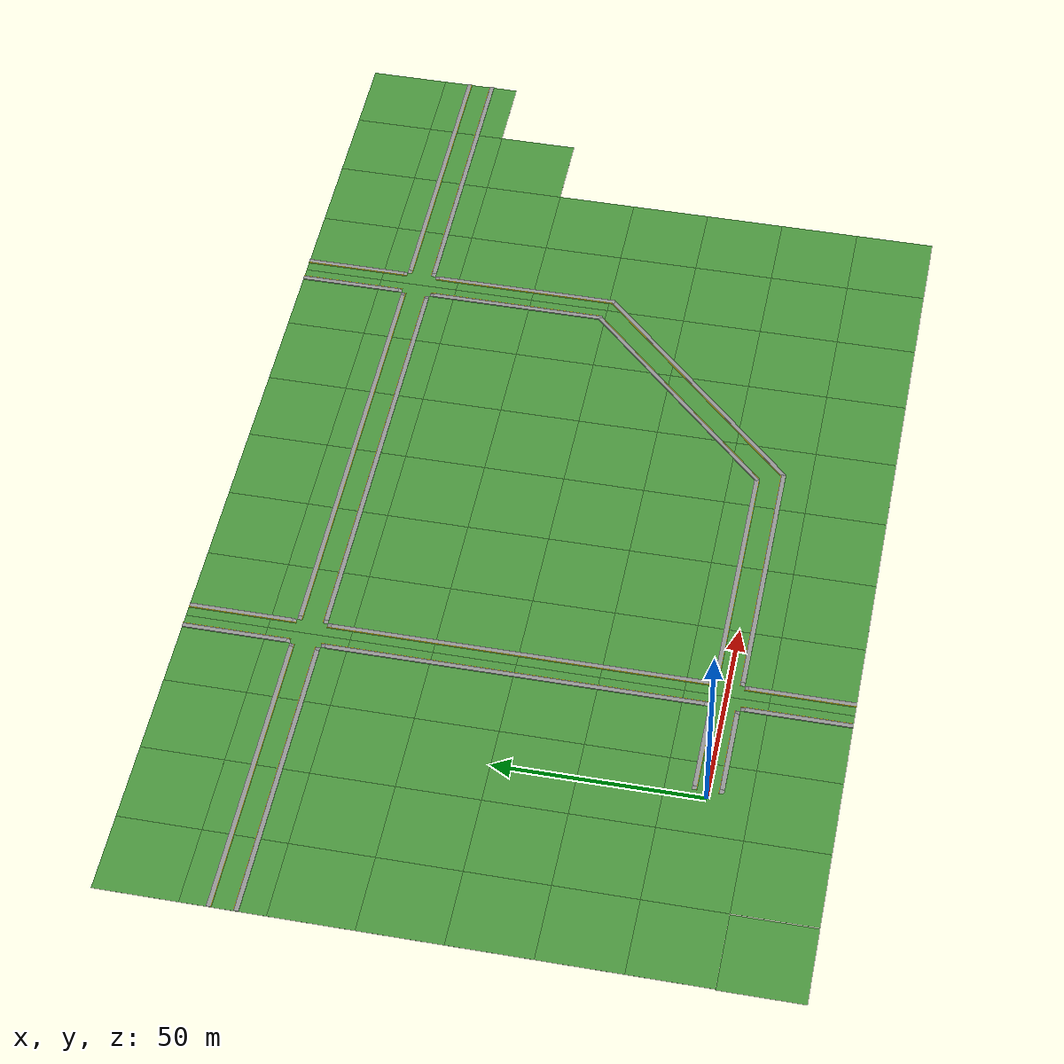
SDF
<sdf version="1.4">
 <world name="delivery_1">
  <scene><ambient>0.2 0.2 0.2 1.0</ambient><grid>false</grid></scene>
  <include><uri>model://grass_plane</uri></include>
  <include><uri>model://sun</uri></include>
  <model name="road_boxes_1">
   <static>true</static>
   <link name="link">
    <collision name="collision_1">
     <pose>51 0 0 0 0 0</pose>
     <geometry><box><size>102 7.4 0.02</size></box></geometry>
     <surface><friction><ode><mu>100</mu><mu2>50</mu2></ode></friction></surface>
    </collision>
    <collision name="collision_2">
     <pose>125 25 0 0 0 0.78539</pose>
     <geometry><box><size>72 7.4 0.02</size></box></geometry>
     <surface><friction><ode><mu>100</mu><mu2>50</mu2></ode></friction></surface>
    </collision>
    <collision name="collision_3">
     <pose>150 90 0 0 0 0</pose>
     <geometry><box><size>7.4 81.0 0.02</size></box></geometry>
     <surface><friction><ode><mu>100</mu><mu2>50</mu2></ode></friction></surface>
    </collision>
   </link>
  </model>
  <model name="road_boxes_2">
   <static>true</static>
   <link name="link">
    <collision name="collision_1">
     <pose>30 50 0 0 0 0</pose>
     <geometry><box><size>7.4 160 0.02</size></box></geometry>
     <surface><friction><ode><mu>100</mu><mu2>50</mu2></ode></friction></surface>
    </collision>
    <collision name="collision_2">
     <pose>90 100 0 0 0 0</pose>
     <geometry><box><size>120 7.4 0.02</size></box></geometry>
     <surface><friction><ode><mu>100</mu><mu2>50</mu2></ode></friction></surface>
    </collision>
   </link>
  </model>
  <model name="sidewalk_1">
   <static>true</static>
   <link name="sidewalk_1">
    <collision name="collision_ramp1a">
     <pose>2.5 -3.15 0.12 0 -0.262 0</pose>
     <geometry><box><size>1.033 1.1 0.01</size></box></geometry>
     <surface><friction><ode><mu>100</mu><mu2>50</mu2></ode></friction></surface>
    </collision>
    <visual name="visual_ramp1a">
     <pose>2.5 -3.15 0.12 0 -0.262 0</pose>
     <geometry><box><size>1.033 1.1 0.01</size></box></geometry>
     <material>
      <script><uri>file://media/materials/scripts/gazebo.material</uri><name>Gazebo/Grey</name></script>
     </material>
    </visual>
    <collision name="collision_ramp1b">
     <pose>2.5 3.15 0.12 0 -0.262 0</pose>
     <geometry><box><size>1.033 1.1 0.01</size></box></geometry>
     <surface><friction><ode><mu>100</mu><mu2>50</mu2></ode></friction></surface>
    </collision>
    <visual name="visual_ramp1b">
     <pose>2.5 3.15 0.12 0 -0.262 0</pose>
     <geometry><box><size>1.033 1.1 0.01</size></box></geometry>
     <material>
      <script><uri>file://media/materials/scripts/gazebo.material</uri><name>Gazebo/Grey</name></script>
     </material>
    </visual>
    <collision name="collision_ramp2a">
     <pose>25.8 -3.15 0.12 0 0.262 0</pose>
     <geometry><box><size>1.033 1.1 0.01</size></box></geometry>
     <surface><friction><ode><mu>100</mu><mu2>50</mu2></ode></friction></surface>
    </collision>
    <visual name="visual_ramp2a">
     <pose>25.8 -3.15 0.12 0 0.262 0</pose>
     <geometry><box><size>1.033 1.1 0.01</size></box></geometry>
     <material>
      <script><uri>file://media/materials/scripts/gazebo.material</uri><name>Gazebo/Grey</name></script>
     </material>
    </visual>
    <collision name="collision_ramp2b">
     <pose>25.8 3.15 0.12 0 0.262 0</pose>
     <geometry><box><size>1.033 1.1 0.01</size></box></geometry>
     <surface><friction><ode><mu>100</mu><mu2>50</mu2></ode></friction></surface>
    </collision>
    <visual name="visual_ramp2b">
     <pose>25.8 3.15 0.12 0 0.262 0</pose>
     <geometry><box><size>1.033 1.1 0.01</size></box></geometry>
     <material>
      <script><uri>file://media/materials/scripts/gazebo.material</uri><name>Gazebo/Grey</name></script>
     </material>
    </visual>
    <collision name="collision_ramp3a">
     <pose>34.2 3.15 0.12 0 -0.262 0</pose>
     <geometry><box><size>1.033 1.1 0.01</size></box></geometry>
     <surface><friction><ode><mu>100</mu><mu2>50</mu2></ode></friction></surface>
    </collision>
    <visual name="visual_ramp3a">
     <pose>34.2 3.15 0.12 0 -0.262 0</pose>
     <geometry><box><size>1.033 1.1 0.01</size></box></geometry>
     <material>
      <script><uri>file://media/materials/scripts/gazebo.material</uri><name>Gazebo/Grey</name></script>
     </material>
    </visual>
    <collision name="collision_ramp3b">
     <pose>34.2 -3.15 0.12 0 -0.262 0</pose>
     <geometry><box><size>1.033 1.1 0.01</size></box></geometry>
     <surface><friction><ode><mu>100</mu><mu2>50</mu2></ode></friction></surface>
    </collision>
    <visual name="visual_ramp3b">
     <pose>34.2 -3.15 0.12 0 -0.262 0</pose>
     <geometry><box><size>1.033 1.1 0.01</size></box></geometry>
     <material>
      <script><uri>file://media/materials/scripts/gazebo.material</uri><name>Gazebo/Grey</name></script>
     </material>
    </visual>
    <collision name="collision_ramp4a">
     <pose>146.85 95.80 0.12 -0.262 0 0</pose>
     <geometry><box><size>1.1 1.033 0.01</size></box></geometry>
     <surface><friction><ode><mu>100</mu><mu2>50</mu2></ode></friction></surface>
    </collision>
    <visual name="visual_ramp4a">
     <pose>146.85 95.80 0.12 -0.262 0 0</pose>
     <geometry><box><size>1.1 1.033 0.01</size></box></geometry>
     <material>
      <script><uri>file://media/materials/scripts/gazebo.material</uri><name>Gazebo/Grey</name></script>
     </material>
    </visual>
    <collision name="collision_ramp4b">
     <pose>153.21 95.71 0.12 -0.262 0 0</pose>
     <geometry><box><size>1.1 1.033 0.01</size></box></geometry>
     <surface><friction><ode><mu>100</mu><mu2>50</mu2></ode></friction></surface>
    </collision>
    <visual name="visual_ramp4b">
     <pose>153.21 95.72 0.12 -0.262 0 0</pose>
     <geometry><box><size>1.1 1.033 0.01</size></box></geometry>
     <material>
      <script><uri>file://media/materials/scripts/gazebo.material</uri><name>Gazebo/Grey</name></script>
     </material>
    </visual>
    <collision name="collision_ramp5a">
     <pose>146.85 104.2 0.12 0.262 0 0</pose>
     <geometry><box><size>1.1 1.033 0.01</size></box></geometry>
     <surface><friction><ode><mu>100</mu><mu2>50</mu2></ode></friction></surface>
    </collision>
    <visual name="visual_ramp5a">
     <pose>146.85 104.2 0.12 0.262 0 0</pose>
     <geometry><box><size>1.1 1.033 0.01</size></box></geometry>
     <material>
      <script><uri>file://media/materials/scripts/gazebo.material</uri><name>Gazebo/Grey</name></script>
     </material>
    </visual>
    <collision name="collision_ramp5b">
     <pose>153.21 104.2 0.12 0.262 0 0</pose>
     <geometry><box><size>1.1 1.033 0.01</size></box></geometry>
     <surface><friction><ode><mu>100</mu><mu2>50</mu2></ode></friction></surface>
    </collision>
    <visual name="visual_ramp5b">
     <pose>153.21 104.2 0.12 0.262 0 0</pose>
     <geometry><box><size>1.1 1.033 0.01</size></box></geometry>
     <material>
      <script><uri>file://media/materials/scripts/gazebo.material</uri><name>Gazebo/Grey</name></script>
     </material>
    </visual>
    <collision name="collision_sidewalk1a">
     <pose>14.15 -3.15 0.13 0 0 0</pose>
     <geometry><box><size>22.3 1.1 0.26</size></box></geometry>
     <surface><friction><ode><mu>100</mu><mu2>50</mu2></ode></friction></surface>
    </collision>
    <visual name="visual_sidewalk1a">
     <pose>14.15 -3.15 0.13 0 0 0</pose>
     <geometry><box><size>22.3 1.1 0.26</size></box></geometry>
     <material>
      <script><uri>file://media/materials/scripts/gazebo.material</uri><name>Gazebo/Grey</name></script>
     </material>
    </visual>
    <collision name="collision_sidewalk1b">
     <pose>14.15 3.15 0.13 0 0 0</pose>
     <geometry><box><size>22.3 1.1 0.26</size></box></geometry>
     <surface><friction><ode><mu>100</mu><mu2>50</mu2></ode></friction></surface>
    </collision>
    <visual name="visual_sidewalk1b">
     <pose>14.15 3.15 0.13 0 0 0</pose>
     <geometry><box><size>22.3 1.1 0.26</size></box></geometry>
     <material>
      <script><uri>file://media/materials/scripts/gazebo.material</uri><name>Gazebo/Grey</name></script>
     </material>
    </visual>
    <collision name="collision_sidewalk2a">
     <pose>68.12 -3.15 0.13 0 0 0</pose>
     <geometry><box><size>66.84 1.1 0.26</size></box></geometry>
     <surface><friction><ode><mu>100</mu><mu2>50</mu2></ode></friction></surface>
    </collision>
    <visual name="visual_sidewalk2a">
     <pose>68.12 -3.15 0.13 0 0 0</pose>
     <geometry><box><size>66.84 1.1 0.26</size></box></geometry>
     <material>
      <script><uri>file://media/materials/scripts/gazebo.material</uri><name>Gazebo/Grey</name></script>
     </material>
    </visual>
    <collision name="collision_sidewalk2b">
     <pose>66.73 3.15 0.13 0 0 0</pose>
     <geometry><box><size>64.07 1.1 0.26</size></box></geometry>
     <surface><friction><ode><mu>100</mu><mu2>50</mu2></ode></friction></surface>
    </collision>
    <visual name="visual_sidewalk2b">
     <pose>66.73 3.15 0.13 0 0 0</pose>
     <geometry><box><size>64.07 1.1 0.26</size></box></geometry>
     <material>
      <script><uri>file://media/materials/scripts/gazebo.material</uri><name>Gazebo/Grey</name></script>
     </material>
    </visual>
    <collision name="collision_sidewalk3a">
     <pose>127.2 22.8 0.13 0 0 0.785</pose>
     <geometry><box><size>73.8 1.1 0.26</size></box></geometry>
     <surface><friction><ode><mu>100</mu><mu2>50</mu2></ode></friction></surface>
    </collision>
    <visual name="visual_sidewalk3a">
     <pose>127.2 22.8 0.13 0 0 0.785</pose>
     <geometry><box><size>73.8 1.1 0.26</size></box></geometry>
     <material>
      <script><uri>file://media/materials/scripts/gazebo.material</uri><name>Gazebo/Grey</name></script>
     </material>
    </visual>
    <collision name="collision_sidewalk3b">
     <pose>122.6 27.05 0.13 0 0 0.785</pose>
     <geometry><box><size>68.35 1.1 0.26</size></box></geometry>
     <surface><friction><ode><mu>100</mu><mu2>50</mu2></ode></friction></surface>
    </collision>
    <visual name="visual_sidewalk3b">
     <pose>122.6 27.05 0.13 0 0 0.785</pose>
     <geometry><box><size>68.35 1.1 0.26</size></box></geometry>
     <material>
      <script><uri>file://media/materials/scripts/gazebo.material</uri><name>Gazebo/Grey</name></script>
     </material>
    </visual>
    <collision name="collision_sidewalk4a">
     <pose>146.85 73.05 0.13 0 0 0</pose>
     <geometry><box><size>1.1 44.5 0.26</size></box></geometry>
     <surface><friction><ode><mu>100</mu><mu2>50</mu2></ode></friction></surface>
    </collision>
    <visual name="visual_sidewalk4a">
     <pose>146.85 73.05 0.13 0 0 0.0</pose>
     <geometry><box><size>1.1 44.5 0.26</size></box></geometry>
     <material>
      <script><uri>file://media/materials/scripts/gazebo.material</uri><name>Gazebo/Grey</name></script>
     </material>
    </visual>
    <collision name="collision_sidewalk4b">
     <pose>153.21 71.86 0.13 0 0 0</pose>
     <geometry><box><size>1.1 46.72 0.26</size></box></geometry>
     <surface><friction><ode><mu>100</mu><mu2>50</mu2></ode></friction></surface>
    </collision>
    <visual name="visual_sidewalk4b">
     <pose>153.21 71.86 0.13 0 0 0.0</pose>
     <geometry><box><size>1.1 46.72 0.26</size></box></geometry>
     <material>
      <script><uri>file://media/materials/scripts/gazebo.material</uri><name>Gazebo/Grey</name></script>
     </material>
    </visual>
    <collision name="collision_sidewalk5a">
     <pose>146.85 117.35 0.13 0 0 0</pose>
     <geometry><box><size>1.1 25.3 0.26</size></box></geometry>
     <surface><friction><ode><mu>100</mu><mu2>50</mu2></ode></friction></surface>
    </collision>
    <visual name="visual_sidewalk5a">
     <pose>146.85 117.35 0.13 0 0 0.0</pose>
     <geometry><box><size>1.1 25.3 0.26</size></box></geometry>
     <material>
      <script><uri>file://media/materials/scripts/gazebo.material</uri><name>Gazebo/Grey</name></script>
     </material>
    </visual>
    <collision name="collision_sidewalk5b">
     <pose>153.21 117.35 0.13 0 0 0</pose>
     <geometry><box><size>1.1 25.3 0.26</size></box></geometry>
     <surface><friction><ode><mu>100</mu><mu2>50</mu2></ode></friction></surface>
    </collision>
    <visual name="visual_sidewalk5b">
     <pose>153.21 117.35 0.13 0 0 0.0</pose>
     <geometry><box><size>1.1 25.3 0.26</size></box></geometry>
     <material>
      <script><uri>file://media/materials/scripts/gazebo.material</uri><name>Gazebo/Grey</name></script>
     </material>
    </visual>
    <collision name="collision_curb1a">
     <pose>14.15 -2.55 0.15 0 0 0</pose>
     <geometry><box><size>24.3 0.1 0.3</size></box></geometry>
     <surface><friction><ode><mu>100</mu><mu2>50</mu2></ode></friction></surface>
    </collision>
    <visual name="visual_curb1a">
     <pose>14.15 -2.55 0.15 0 0 0</pose>
     <geometry><box><size>24.3 0.1 0.3</size></box></geometry>
     <material>
      <script><uri>file://media/materials/scripts/gazebo.material</uri><name>Gazebo/Yellow</name></script>
     </material>
    </visual>
    <collision name="collision_curb1b">
     <pose>14.15 2.55 0.15 0 0 0</pose>
     <geometry><box><size>24.3 0.1 0.3</size></box></geometry>
     <surface><friction><ode><mu>100</mu><mu2>50</mu2></ode></friction></surface>
    </collision>
    <visual name="visual_curb1b">
     <pose>14.15 2.55 0.15 0 0 0</pose>
     <geometry><box><size>24.3 0.1 0.3</size></box></geometry>
     <material>
      <script><uri>file://media/materials/scripts/gazebo.material</uri><name>Gazebo/Yellow</name></script>
     </material>
    </visual>
    <collision name="collision_curb2a">
     <pose>67.42 -2.55 0.15 0 0 0</pose>
     <geometry><box><size>67.44 0.1 0.3</size></box></geometry>
     <surface><friction><ode><mu>100</mu><mu2>50</mu2></ode></friction></surface>
    </collision>
    <visual name="visual_curb2a">
     <pose>67.42 -2.55 0.15 0 0 0</pose>
     <geometry><box><size>67.44 0.1 0.3</size></box></geometry>
     <material>
      <script><uri>file://media/materials/scripts/gazebo.material</uri><name>Gazebo/Yellow</name></script>
     </material>
    </visual>
    <collision name="collision_curb2b">
     <pose>66.23 2.55 0.15 0 0 0</pose>
     <geometry><box><size>65.07 0.1 0.3</size></box></geometry>
     <surface><friction><ode><mu>100</mu><mu2>50</mu2></ode></friction></surface>
    </collision>
    <visual name="visual_curb2b">
     <pose>66.23 2.55 0.15 0 0 0</pose>
     <geometry><box><size>65.07 0.1 0.3</size></box></geometry>
     <material>
      <script><uri>file://media/materials/scripts/gazebo.material</uri><name>Gazebo/Yellow</name></script>
     </material>
    </visual>
    <collision name="collision_curb3a">
     <pose>123.04 26.75 0.15 0 0 0.785</pose>
     <geometry><box><size>68.30 0.1 0.3</size></box></geometry>
     <surface><friction><ode><mu>100</mu><mu2>50</mu2></ode></friction></surface>
    </collision>
    <visual name="visual_curb3a">
     <pose>123.04 26.75 0.15 0 0 0.785</pose>
     <geometry><box><size>68.30 0.1 0.3</size></box></geometry>
     <material>
      <script><uri>file://media/materials/scripts/gazebo.material</uri><name>Gazebo/Yellow</name></script>
     </material>
    </visual>
    <collision name="collision_curb3b">
     <pose>126.75 23.27 0.15 0 0 0.785</pose>
     <geometry><box><size>73.424 0.1 0.3</size></box></geometry>
     <surface><friction><ode><mu>100</mu><mu2>50</mu2></ode></friction></surface>
    </collision>
    <visual name="visual_curb3b">
     <pose>126.75 23.27 0.15 0 0 0.785</pose>
     <geometry><box><size>73.424 0.1 0.3</size></box></geometry>
     <material>
      <script><uri>file://media/materials/scripts/gazebo.material</uri><name>Gazebo/Yellow</name></script>
     </material>
    </visual>
    <collision name="collision_curb4a">
     <pose>147.45 73.512 0.15 0 0 0</pose>
     <geometry><box><size>0.1 45.21 0.3</size></box></geometry>
     <surface><friction><ode><mu>100</mu><mu2>50</mu2></ode></friction></surface>
    </collision>
    <visual name="visual_curb4a">
     <pose>147.45 73.512 0.15 0 0 0</pose>
     <geometry><box><size>0.1 45.21 0.3</size></box></geometry>
     <material>
      <script><uri>file://media/materials/scripts/gazebo.material</uri><name>Gazebo/Yellow</name></script>
     </material>
    </visual>
    <collision name="collision_curb4b">
     <pose>152.61 72.527 0.15 0 0 0</pose>
     <geometry><box><size>0.1 46.624 0.3</size></box></geometry>
     <surface><friction><ode><mu>100</mu><mu2>50</mu2></ode></friction></surface>
    </collision>
    <visual name="visual_curb4b">
     <pose>152.61 72.527 0.15 0 0 0</pose>
     <geometry><box><size>0.1 46.624 0.3</size></box></geometry>
     <material>
      <script><uri>file://media/materials/scripts/gazebo.material</uri><name>Gazebo/Yellow</name></script>
     </material>
    </visual>
    <collision name="collision_curb5a">
     <pose>147.45 116.85 0.15 0 0 0</pose>
     <geometry><box><size>0.1 26.3 0.3</size></box></geometry>
     <surface><friction><ode><mu>100</mu><mu2>50</mu2></ode></friction></surface>
    </collision>
    <visual name="visual_curb5a">
     <pose>147.45 116.85 0.15 0 0 0</pose>
     <geometry><box><size>0.1 26.3 0.3</size></box></geometry>
     <material>
      <script><uri>file://media/materials/scripts/gazebo.material</uri><name>Gazebo/Yellow</name></script>
     </material>
    </visual>
    <collision name="collision_curb5b">
     <pose>152.61 116.85 0.15 0 0 0</pose>
     <geometry><box><size>0.1 26.3 0.3</size></box></geometry>
     <surface><friction><ode><mu>100</mu><mu2>50</mu2></ode></friction></surface>
    </collision>
    <visual name="visual_curb5b">
     <pose>152.61 116.85 0.15 0 0 0</pose>
     <geometry><box><size>0.1 26.3 0.3</size></box></geometry>
     <material>
      <script><uri>file://media/materials/scripts/gazebo.material</uri><name>Gazebo/Yellow</name></script>
     </material>
    </visual>
   </link>
  </model>
  <model name="sidewalk_2">
   <static>true</static>
   <link name="sidewalk_2">
    <collision name="collision_ramp1a">
     <pose>26.85 -4.2 0.12 -0.262 0 0</pose>
     <geometry><box><size>1.1 1.033 0.01</size></box></geometry>
     <surface><friction><ode><mu>100</mu><mu2>50</mu2></ode></friction></surface>
    </collision>
    <visual name="visual_ramp1a">
     <pose>26.85 -4.2 0.12 -0.262 0 0</pose>
     <geometry><box><size>1.1 1.033 0.01</size></box></geometry>
     <material>
      <script><uri>file://media/materials/scripts/gazebo.material</uri><name>Gazebo/Grey</name></script>
     </material>
    </visual>
    <collision name="collision_ramp1b">
     <pose>33.15 -4.2 0.12 -0.262 0 0</pose>
     <geometry><box><size>1.1 1.033 0.01</size></box></geometry>
     <surface><friction><ode><mu>100</mu><mu2>50</mu2></ode></friction></surface>
    </collision>
    <visual name="visual_ramp1b">
     <pose>33.15 -4.2 0.12 -0.262 0 0</pose>
     <geometry><box><size>1.1 1.033 0.01</size></box></geometry>
     <material>
      <script><uri>file://media/materials/scripts/gazebo.material</uri><name>Gazebo/Grey</name></script>
     </material>
    </visual>
    <collision name="collision_ramp2a">
     <pose>26.85 4.2 0.12 0.262 0 0</pose>
     <geometry><box><size>1.1 1.033 0.01</size></box></geometry>
     <surface><friction><ode><mu>100</mu><mu2>50</mu2></ode></friction></surface>
    </collision>
    <visual name="visual_ramp2a">
     <pose>26.85 4.2 0.12 0.262 0 0</pose>
     <geometry><box><size>1.1 1.033 0.01</size></box></geometry>
     <material>
      <script><uri>file://media/materials/scripts/gazebo.material</uri><name>Gazebo/Grey</name></script>
     </material>
    </visual>
    <collision name="collision_ramp2b">
     <pose>33.15 4.2 0.12 0.262 0 0</pose>
     <geometry><box><size>1.1 1.033 0.01</size></box></geometry>
     <surface><friction><ode><mu>100</mu><mu2>50</mu2></ode></friction></surface>
    </collision>
    <visual name="visual_ramp2b">
     <pose>33.15 4.2 0.12 0.262 0 0</pose>
     <geometry><box><size>1.1 1.033 0.01</size></box></geometry>
     <material>
      <script><uri>file://media/materials/scripts/gazebo.material</uri><name>Gazebo/Grey</name></script>
     </material>
    </visual>
    <collision name="collision_ramp3a">
     <pose>26.85 95.8 0.12 -0.262 0 0</pose>
     <geometry><box><size>1.1 1.033 0.01</size></box></geometry>
     <surface><friction><ode><mu>100</mu><mu2>50</mu2></ode></friction></surface>
    </collision>
    <visual name="visual_ramp3a">
     <pose>26.85 95.8 0.12 -0.262 0 0</pose>
     <geometry><box><size>1.1 1.033 0.01</size></box></geometry>
     <material>
      <script><uri>file://media/materials/scripts/gazebo.material</uri><name>Gazebo/Grey</name></script>
     </material>
    </visual>
    <collision name="collision_ramp3b">
     <pose>33.15 95.8 0.12 -0.262 0 0</pose>
     <geometry><box><size>1.1 1.033 0.01</size></box></geometry>
     <surface><friction><ode><mu>100</mu><mu2>50</mu2></ode></friction></surface>
    </collision>
    <visual name="visual_ramp3b">
     <pose>33.15 95.8 0.12 -0.262 0 0</pose>
     <geometry><box><size>1.1 1.033 0.01</size></box></geometry>
     <material>
      <script><uri>file://media/materials/scripts/gazebo.material</uri><name>Gazebo/Grey</name></script>
     </material>
    </visual>
    <collision name="collision_ramp4a">
     <pose>26.85 104.2 0.12 0.262 0 0</pose>
     <geometry><box><size>1.1 1.033 0.01</size></box></geometry>
     <surface><friction><ode><mu>100</mu><mu2>50</mu2></ode></friction></surface>
    </collision>
    <visual name="visual_ramp4a">
     <pose>26.85 104.2 0.12 0.262 0 0</pose>
     <geometry><box><size>1.1 1.033 0.01</size></box></geometry>
     <material>
      <script><uri>file://media/materials/scripts/gazebo.material</uri><name>Gazebo/Grey</name></script>
     </material>
    </visual>
    <collision name="collision_ramp4b">
     <pose>33.15 104.2 0.12 0.262 0 0</pose>
     <geometry><box><size>1.1 1.033 0.01</size></box></geometry>
     <surface><friction><ode><mu>100</mu><mu2>50</mu2></ode></friction></surface>
    </collision>
    <visual name="visual_ramp4b">
     <pose>33.15 104.2 0.12 0.262 0 0</pose>
     <geometry><box><size>1.1 1.033 0.01</size></box></geometry>
     <material>
      <script><uri>file://media/materials/scripts/gazebo.material</uri><name>Gazebo/Grey</name></script>
     </material>
    </visual>
    <collision name="collision_sidewalk1a">
     <pose>26.85 -17.35 0.13 0 0 0</pose>
     <geometry><box><size>1.1 25.3 0.26</size></box></geometry>
     <surface><friction><ode><mu>100</mu><mu2>50</mu2></ode></friction></surface>
    </collision>
    <visual name="visual_sidewalk1a">
     <pose>26.85 -17.35 0.13 0 0 0</pose>
     <geometry><box><size>1.1 25.3 0.26</size></box></geometry>
     <material>
      <script><uri>file://media/materials/scripts/gazebo.material</uri><name>Gazebo/Grey</name></script>
     </material>
    </visual>
    <collision name="collision_sidewalk1b">
     <pose>33.15 -17.35 0.13 0 0 0</pose>
     <geometry><box><size>1.1 25.3 0.26</size></box></geometry>
     <surface><friction><ode><mu>100</mu><mu2>50</mu2></ode></friction></surface>
    </collision>
    <visual name="visual_sidewalk1b">
     <pose>33.15 -17.35 0.13 0 0 0</pose>
     <geometry><box><size>1.1 25.3 0.26</size></box></geometry>
     <material>
      <script><uri>file://media/materials/scripts/gazebo.material</uri><name>Gazebo/Grey</name></script>
     </material>
    </visual>
    <collision name="collision_sidewalk2a">
     <pose>26.85 50 0.13 0 0 0</pose>
     <geometry><box><size>1.1 90.6 0.26</size></box></geometry>
     <surface><friction><ode><mu>100</mu><mu2>50</mu2></ode></friction></surface>
    </collision>
    <visual name="visual_sidewalk2a">
     <pose>26.85 50 0.13 0 0 0</pose>
     <geometry><box><size>1.1 90.6 0.26</size></box></geometry>
     <material>
      <script><uri>file://media/materials/scripts/gazebo.material</uri><name>Gazebo/Grey</name></script>
     </material>
    </visual>
    <collision name="collision_sidewalk2b">
     <pose>33.15 50 0.13 0 0 0</pose>
     <geometry><box><size>1.1 90.6 0.26</size></box></geometry>
     <surface><friction><ode><mu>100</mu><mu2>50</mu2></ode></friction></surface>
    </collision>
    <visual name="visual_sidewalk2b">
     <pose>33.15 50 0.13 0 0 0</pose>
     <geometry><box><size>1.1 90.6 0.26</size></box></geometry>
     <material>
      <script><uri>file://media/materials/scripts/gazebo.material</uri><name>Gazebo/Grey</name></script>
     </material>
    </visual>
    <collision name="collision_sidewalk3a">
     <pose>26.85 117.35 0.13 0 0 0</pose>
     <geometry><box><size>1.1 25.3 0.26</size></box></geometry>
     <surface><friction><ode><mu>100</mu><mu2>50</mu2></ode></friction></surface>
    </collision>
    <visual name="visual_sidewalk3a">
     <pose>26.85 117.35 0.13 0 0 0</pose>
     <geometry><box><size>1.1 25.3 0.26</size></box></geometry>
     <material>
      <script><uri>file://media/materials/scripts/gazebo.material</uri><name>Gazebo/Grey</name></script>
     </material>
    </visual>
    <collision name="collision_sidewalk3b">
     <pose>33.15 117.35 0.13 0 0 0</pose>
     <geometry><box><size>1.1 25.3 0.26</size></box></geometry>
     <surface><friction><ode><mu>100</mu><mu2>50</mu2></ode></friction></surface>
    </collision>
    <visual name="visual_sidewalk3b">
     <pose>33.15 117.35 0.13 0 0 0</pose>
     <geometry><box><size>1.1 25.3 0.26</size></box></geometry>
     <material>
      <script><uri>file://media/materials/scripts/gazebo.material</uri><name>Gazebo/Grey</name></script>
     </material>
    </visual>
    <collision name="collision_curb1a">
     <pose>27.45 -16.85 0.15 0 0 0</pose>
     <geometry><box><size>0.1 26.3 0.3</size></box></geometry>
     <surface><friction><ode><mu>100</mu><mu2>50</mu2></ode></friction></surface>
    </collision>
    <visual name="visual_curb1a">
     <pose>27.45 -16.85 0.15 0 0 0</pose>
     <geometry><box><size>0.1 26.3 0.3</size></box></geometry>
     <material>
      <script><uri>file://media/materials/scripts/gazebo.material</uri><name>Gazebo/Yellow</name></script>
     </material>
    </visual>
    <collision name="collision_curb1b">
     <pose>32.55 -16.85 0.15 0 0 0</pose>
     <geometry><box><size>0.1 26.3 0.3</size></box></geometry>
     <surface><friction><ode><mu>100</mu><mu2>50</mu2></ode></friction></surface>
    </collision>
    <visual name="visual_curb1b">
     <pose>32.55 -16.85 0.15 0 0 0</pose>
     <geometry><box><size>0.1 26.3 0.3</size></box></geometry>
     <material>
      <script><uri>file://media/materials/scripts/gazebo.material</uri><name>Gazebo/Yellow</name></script>
     </material>
    </visual>
    <collision name="collision_curb2a">
     <pose>27.45 50 0.15 0 0 0</pose>
     <geometry><box><size>0.1 92.6 0.3</size></box></geometry>
     <surface><friction><ode><mu>100</mu><mu2>50</mu2></ode></friction></surface>
    </collision>
    <visual name="visual_curb2a">
     <pose>27.45 50 0.15 0 0 0</pose>
     <geometry><box><size>0.1 92.6 0.3</size></box></geometry>
     <material>
      <script><uri>file://media/materials/scripts/gazebo.material</uri><name>Gazebo/Yellow</name></script>
     </material>
    </visual>
    <collision name="collision_curb2b">
     <pose>32.55 50 0.15 0 0 0</pose>
     <geometry><box><size>0.1 92.6 0.3</size></box></geometry>
     <surface><friction><ode><mu>100</mu><mu2>50</mu2></ode></friction></surface>
    </collision>
    <visual name="visual_curb2b">
     <pose>32.55 50 0.15 0 0 0</pose>
     <geometry><box><size>0.1 92.6 0.3</size></box></geometry>
     <material>
      <script><uri>file://media/materials/scripts/gazebo.material</uri><name>Gazebo/Yellow</name></script>
     </material>
    </visual>
    <collision name="collision_curb3a">
     <pose>27.45 116.85 0.15 0 0 0</pose>
     <geometry><box><size>0.1 26.3 0.3</size></box></geometry>
     <surface><friction><ode><mu>100</mu><mu2>50</mu2></ode></friction></surface>
    </collision>
    <visual name="visual_curb3a">
     <pose>27.45 116.85 0.15 0 0 0</pose>
     <geometry><box><size>0.1 26.3 0.3</size></box></geometry>
     <material>
      <script><uri>file://media/materials/scripts/gazebo.material</uri><name>Gazebo/Yellow</name></script>
     </material>
    </visual>
    <collision name="collision_curb3b">
     <pose>32.55 116.85 0.15 0 0 0</pose>
     <geometry><box><size>0.1 26.3 0.3</size></box></geometry>
     <surface><friction><ode><mu>100</mu><mu2>50</mu2></ode></friction></surface>
    </collision>
    <visual name="visual_curb3b">
     <pose>32.55 116.85 0.15 0 0 0</pose>
     <geometry><box><size>0.1 26.3 0.3</size></box></geometry>
     <material>
      <script><uri>file://media/materials/scripts/gazebo.material</uri><name>Gazebo/Yellow</name></script>
     </material>
    </visual>
   </link>
  </model>
  <model name="sidewalk_3">
   <static>true</static>
   <link name="sidewalk_3">
    <collision name="collision_ramp1a">
     <pose>25.8 96.85 0.12 0 0.262 0</pose>
     <geometry><box><size>1.033 1.1 0.01</size></box></geometry>
     <surface><friction><ode><mu>100</mu><mu2>50</mu2></ode></friction></surface>
    </collision>
    <visual name="visual_ramp1a">
     <pose>25.8 96.85 0.12 0 0.262 0</pose>
     <geometry><box><size>1.033 1.1 0.01</size></box></geometry>
     <material>
      <script><uri>file://media/materials/scripts/gazebo.material</uri><name>Gazebo/Grey</name></script>
     </material>
    </visual>
    <collision name="collision_ramp1b">
     <pose>25.8 103.15 0.12 0 0.262 0</pose>
     <geometry><box><size>1.033 1.1 0.01</size></box></geometry>
     <surface><friction><ode><mu>100</mu><mu2>50</mu2></ode></friction></surface>
    </collision>
    <visual name="visual_ramp1b">
     <pose>25.8 103.15 0.12 0 0.262 0</pose>
     <geometry><box><size>1.033 1.1 0.01</size></box></geometry>
     <material>
      <script><uri>file://media/materials/scripts/gazebo.material</uri><name>Gazebo/Grey</name></script>
     </material>
    </visual>
    <collision name="collision_ramp2a">
     <pose>34.2 96.85 0.12 0 -0.262 0</pose>
     <geometry><box><size>1.033 1.1 0.01</size></box></geometry>
     <surface><friction><ode><mu>100</mu><mu2>50</mu2></ode></friction></surface>
    </collision>
    <visual name="visual_ramp2a">
     <pose>34.2 96.85 0.12 0 -0.262 0</pose>
     <geometry><box><size>1.033 1.1 0.01</size></box></geometry>
     <material>
      <script><uri>file://media/materials/scripts/gazebo.material</uri><name>Gazebo/Grey</name></script>
     </material>
    </visual>
    <collision name="collision_ramp2b">
     <pose>34.2 103.15 0.12 0 -0.262 0</pose>
     <geometry><box><size>1.033 1.1 0.01</size></box></geometry>
     <surface><friction><ode><mu>100</mu><mu2>50</mu2></ode></friction></surface>
    </collision>
    <visual name="visual_ramp2b">
     <pose>34.2 103.15 0.12 0 -0.262 0</pose>
     <geometry><box><size>1.033 1.1 0.01</size></box></geometry>
     <material>
      <script><uri>file://media/materials/scripts/gazebo.material</uri><name>Gazebo/Grey</name></script>
     </material>
    </visual>
    <collision name="collision_ramp3a">
     <pose>145.8 96.85 0.12 0 0.262 0</pose>
     <geometry><box><size>1.033 1.1 0.01</size></box></geometry>
     <surface><friction><ode><mu>100</mu><mu2>50</mu2></ode></friction></surface>
    </collision>
    <visual name="visual_ramp3a">
     <pose>145.8 96.85 0.12 0 0.262 0</pose>
     <geometry><box><size>1.033 1.1 0.01</size></box></geometry>
     <material>
      <script><uri>file://media/materials/scripts/gazebo.material</uri><name>Gazebo/Grey</name></script>
     </material>
    </visual>
    <collision name="collision_ramp3b">
     <pose>145.8 103.15 0.12 0 0.262 0</pose>
     <geometry><box><size>1.033 1.1 0.01</size></box></geometry>
     <surface><friction><ode><mu>100</mu><mu2>50</mu2></ode></friction></surface>
    </collision>
    <visual name="visual_ramp3b">
     <pose>145.8 103.15 0.12 0 0.262 0</pose>
     <geometry><box><size>1.033 1.1 0.01</size></box></geometry>
     <material>
      <script><uri>file://media/materials/scripts/gazebo.material</uri><name>Gazebo/Grey</name></script>
     </material>
    </visual>
    <collision name="collision_ramp4a">
     <pose>154.2 96.85 0.12 0 -0.262 0</pose>
     <geometry><box><size>1.033 1.1 0.01</size></box></geometry>
     <surface><friction><ode><mu>100</mu><mu2>50</mu2></ode></friction></surface>
    </collision>
    <visual name="visual_ramp4a">
     <pose>154.2 96.85 0.12 0 -0.262 0</pose>
     <geometry><box><size>1.033 1.1 0.01</size></box></geometry>
     <material>
      <script><uri>file://media/materials/scripts/gazebo.material</uri><name>Gazebo/Grey</name></script>
     </material>
    </visual>
    <collision name="collision_ramp4b">
     <pose>154.2 103.15 0.12 0 -0.262 0</pose>
     <geometry><box><size>1.033 1.1 0.01</size></box></geometry>
     <surface><friction><ode><mu>100</mu><mu2>50</mu2></ode></friction></surface>
    </collision>
    <visual name="visual_ramp4b">
     <pose>154.2 103.15 0.12 0 -0.262 0</pose>
     <geometry><box><size>1.033 1.1 0.01</size></box></geometry>
     <material>
      <script><uri>file://media/materials/scripts/gazebo.material</uri><name>Gazebo/Grey</name></script>
     </material>
    </visual>
    <collision name="collision_sidewalk1a">
     <pose>-12.35 96.85 0.13 0 0 0</pose>
     <geometry><box><size>75.3 1.1 0.26</size></box></geometry>
     <surface><friction><ode><mu>100</mu><mu2>50</mu2></ode></friction></surface>
    </collision>
    <visual name="visual_sidewalk1a">
     <pose>-12.35 96.85 0.13 0 0 0</pose>
     <geometry><box><size>75.3 1.1 0.26</size></box></geometry>
     <material>
      <script><uri>file://media/materials/scripts/gazebo.material</uri><name>Gazebo/Grey</name></script>
     </material>
    </visual>
    <collision name="collision_sidewalk1b">
     <pose>-12.35 103.15 0.13 0 0 0</pose>
     <geometry><box><size>75.3 1.1 0.26</size></box></geometry>
     <surface><friction><ode><mu>100</mu><mu2>50</mu2></ode></friction></surface>
    </collision>
    <visual name="visual_sidewalk1b">
     <pose>-12.35 103.15 0.13 0 0 0</pose>
     <geometry><box><size>75.3 1.1 0.26</size></box></geometry>
     <material>
      <script><uri>file://media/materials/scripts/gazebo.material</uri><name>Gazebo/Grey</name></script>
     </material>
    </visual>
    <collision name="collision_sidewalk2a">
     <pose>90 96.85 0.13 0 0 0</pose>
     <geometry><box><size>110.6 1.1 0.26</size></box></geometry>
     <surface><friction><ode><mu>100</mu><mu2>50</mu2></ode></friction></surface>
    </collision>
    <visual name="visual_sidewalk2a">
     <pose>90 96.85 0.13 0 0 0</pose>
     <geometry><box><size>110.6 1.1 0.26</size></box></geometry>
     <material>
      <script><uri>file://media/materials/scripts/gazebo.material</uri><name>Gazebo/Grey</name></script>
     </material>
    </visual>
    <collision name="collision_sidewalk2b">
     <pose>90 103.15 0.13 0 0 0</pose>
     <geometry><box><size>110.6 1.1 0.26</size></box></geometry>
     <surface><friction><ode><mu>100</mu><mu2>50</mu2></ode></friction></surface>
    </collision>
    <visual name="visual_sidewalk2b">
     <pose>90 103.15 0.13 0 0 0</pose>
     <geometry><box><size>110.6 1.1 0.26</size></box></geometry>
     <material>
      <script><uri>file://media/materials/scripts/gazebo.material</uri><name>Gazebo/Grey</name></script>
     </material>
    </visual>
    <collision name="collision_sidewalk3a">
     <pose>192.35 96.85 0.13 0 0 0</pose>
     <geometry><box><size>75.3 1.1 0.26</size></box></geometry>
     <surface><friction><ode><mu>100</mu><mu2>50</mu2></ode></friction></surface>
    </collision>
    <visual name="visual_sidewalk3a">
     <pose>192.35 96.85 0.13 0 0 0</pose>
     <geometry><box><size>75.3 1.1 0.26</size></box></geometry>
     <material>
      <script><uri>file://media/materials/scripts/gazebo.material</uri><name>Gazebo/Grey</name></script>
     </material>
    </visual>
    <collision name="collision_sidewalk3b">
     <pose>192.35 103.15 0.13 0 0 0</pose>
     <geometry><box><size>75.3 1.1 0.26</size></box></geometry>
     <surface><friction><ode><mu>100</mu><mu2>50</mu2></ode></friction></surface>
    </collision>
    <visual name="visual_sidewalk3b">
     <pose>192.35 103.15 0.13 0 0 0</pose>
     <geometry><box><size>75.3 1.1 0.26</size></box></geometry>
     <material>
      <script><uri>file://media/materials/scripts/gazebo.material</uri><name>Gazebo/Grey</name></script>
     </material>
    </visual>
    <collision name="collision_curb1a">
     <pose>-11.85 97.45 0.15 0 0 0</pose>
     <geometry><box><size>76.3 0.1 0.3</size></box></geometry>
     <surface><friction><ode><mu>100</mu><mu2>50</mu2></ode></friction></surface>
    </collision>
    <visual name="visual_curb1a">
     <pose>-11.85 97.45 0.15 0 0 0</pose>
     <geometry><box><size>76.3 0.1 0.3</size></box></geometry>
     <material>
      <script><uri>file://media/materials/scripts/gazebo.material</uri><name>Gazebo/Yellow</name></script>
     </material>
    </visual>
    <collision name="collision_curb1b">
     <pose>-11.85 102.55 0.15 0 0 0</pose>
     <geometry><box><size>76.3 0.1 0.3</size></box></geometry>
     <surface><friction><ode><mu>100</mu><mu2>50</mu2></ode></friction></surface>
    </collision>
    <visual name="visual_curb1b">
     <pose>-11.85 102.55 0.15 0 0 0</pose>
     <geometry><box><size>76.3 0.1 0.3</size></box></geometry>
     <material>
      <script><uri>file://media/materials/scripts/gazebo.material</uri><name>Gazebo/Yellow</name></script>
     </material>
    </visual>
    <collision name="collision_curb2a">
     <pose>90 97.45 0.15 0 0 0</pose>
     <geometry><box><size>112.6 0.1 0.3</size></box></geometry>
     <surface><friction><ode><mu>100</mu><mu2>50</mu2></ode></friction></surface>
    </collision>
    <visual name="visual_curb2a">
     <pose>90 97.45 0.15 0 0 0</pose>
     <geometry><box><size>112.6 0.1 0.3</size></box></geometry>
     <material>
      <script><uri>file://media/materials/scripts/gazebo.material</uri><name>Gazebo/Yellow</name></script>
     </material>
    </visual>
    <collision name="collision_curb2b">
     <pose>90 102.55 0.15 0 0 0</pose>
     <geometry><box><size>112.6 0.1 0.3</size></box></geometry>
     <surface><friction><ode><mu>100</mu><mu2>50</mu2></ode></friction></surface>
    </collision>
    <visual name="visual_curb2b">
     <pose>90 102.55 0.15 0 0 0</pose>
     <geometry><box><size>112.6 0.1 0.3</size></box></geometry>
     <material>
      <script><uri>file://media/materials/scripts/gazebo.material</uri><name>Gazebo/Yellow</name></script>
     </material>
    </visual>
    <collision name="collision_curb3a">
     <pose>191.85 97.45 0.15 0 0 0</pose>
     <geometry><box><size>76.3 0.1 0.3</size></box></geometry>
     <surface><friction><ode><mu>100</mu><mu2>50</mu2></ode></friction></surface>
    </collision>
    <visual name="visual_curb3a">
     <pose>191.85 97.45 0.15 0 0 0</pose>
     <geometry><box><size>76.3 0.1 0.3</size></box></geometry>
     <material>
      <script><uri>file://media/materials/scripts/gazebo.material</uri><name>Gazebo/Yellow</name></script>
     </material>
    </visual>
    <collision name="collision_curb3b">
     <pose>191.85 102.55 0.15 0 0 0</pose>
     <geometry><box><size>76.3 0.1 0.3</size></box></geometry>
     <surface><friction><ode><mu>100</mu><mu2>50</mu2></ode></friction></surface>
    </collision>
    <visual name="visual_curb3b">
     <pose>191.85 102.55 0.15 0 0 0</pose>
     <geometry><box><size>76.3 0.1 0.3</size></box></geometry>
     <material>
      <script><uri>file://media/materials/scripts/gazebo.material</uri><name>Gazebo/Yellow</name></script>
     </material>
    </visual>
   </link>
  </model>
  <plugin filename="libcollision_map_creator.so" name="collision_map_creator"/>
 </world>
</sdf>
